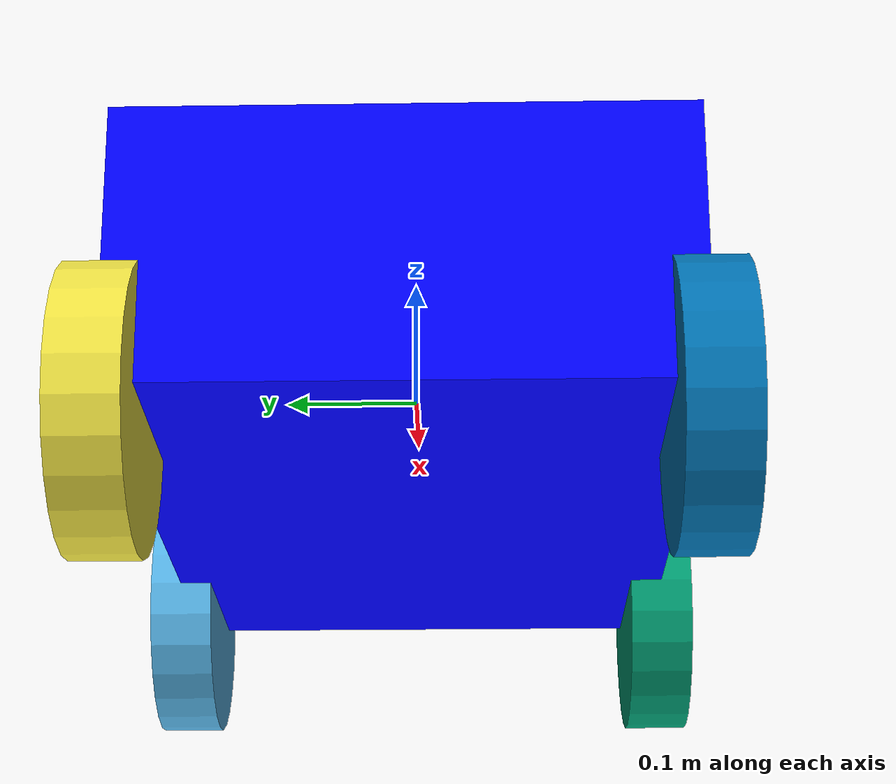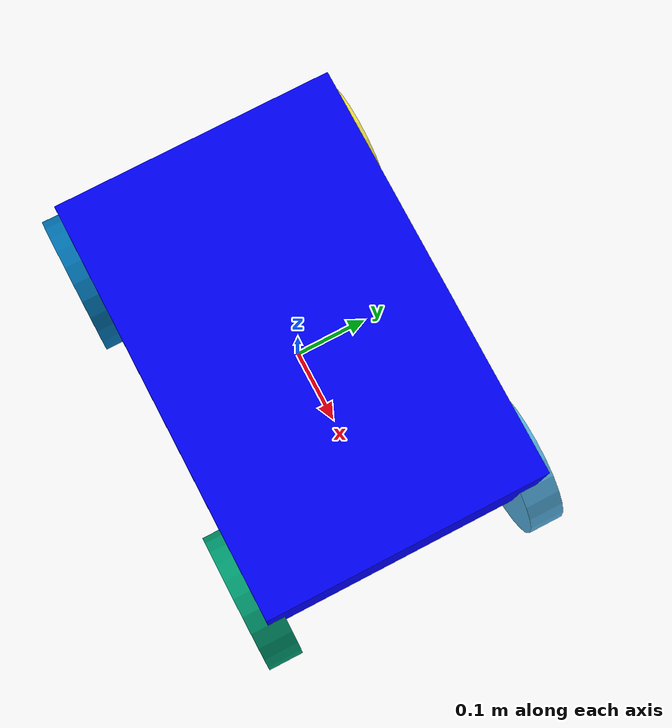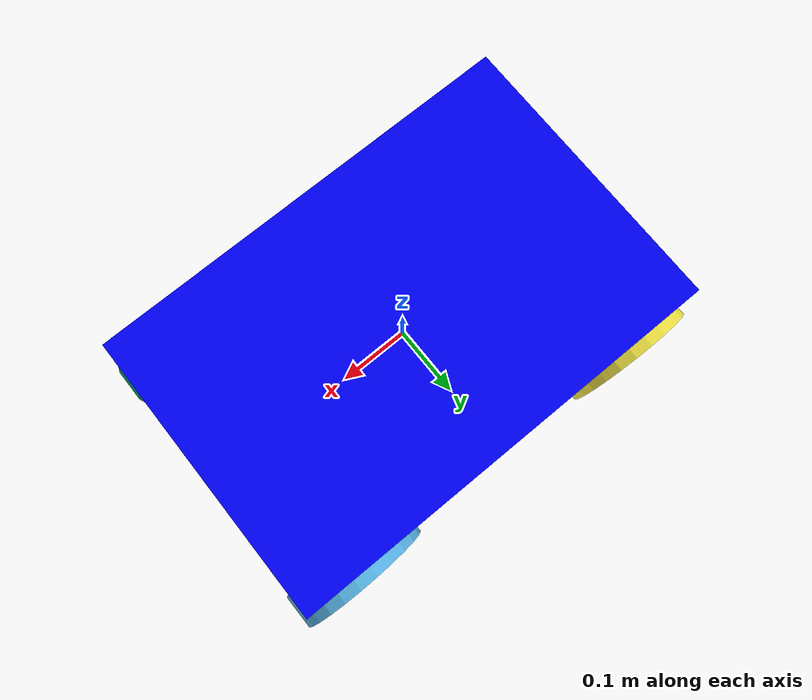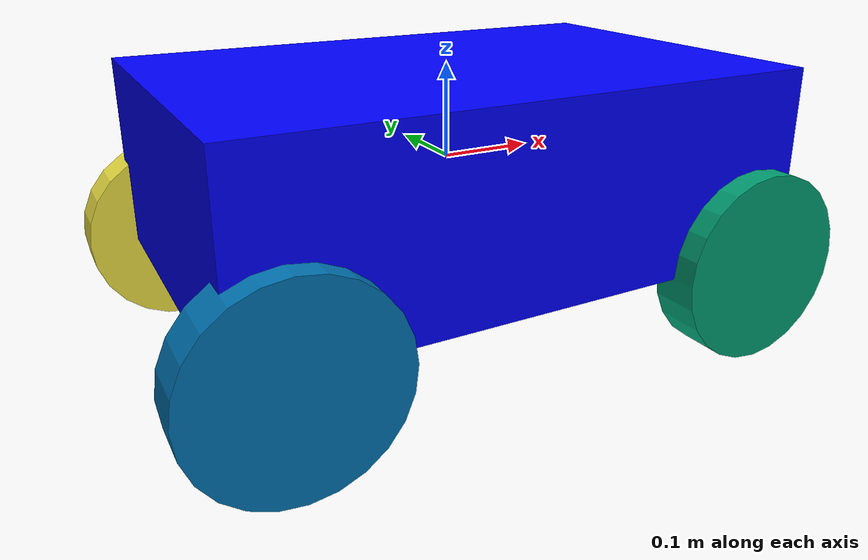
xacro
<?xml version="1.0"?>

<robot name="rover" xmlns:xacro="http://www.ros.org/wiki/xacro">

  <xacro:property name="wheel_radius" value="0.1"/>
  <xacro:property name="wheel_width" value="0.05"/>

  <!-- Chassis -->

  <link name="base_link">

    <visual>
      <geometry>
        <box size="0.6 0.4 0.2"/>
      </geometry>

      <material name="blue">
        <color rgba="0 0 1 1"/>
      </material>

    </visual>

    <collision>
      <geometry>
        <box size="0.6 0.4 0.2"/>
      </geometry>
    </collision>

    <inertial>
      <mass value="10"/>
      <origin xyz="0 0 0"/>
      <inertia
          ixx="1" ixy="0" ixz="0"
          iyy="1" iyz="0"
          izz="1"/>
    </inertial>

  </link>

  <!-- Wheel Macro -->

  <xacro:macro name="wheel" params="name x y">

    <link name="${name}">

      <visual>
        <geometry>
          <cylinder radius="${wheel_radius}"
                    length="${wheel_width}"/>
        </geometry>
      </visual>

      <collision>
        <geometry>
          <cylinder radius="${wheel_radius}"
                    length="${wheel_width}"/>
        </geometry>
      </collision>

    </link>

    <joint name="${name}_joint"
           type="continuous">

      <parent link="base_link"/>
      <child link="${name}"/>

      <origin xyz="${x} ${y} -0.1"
              rpy="1.57 0 0"/>

      <axis xyz="0 0 1"/>

    </joint>

  </xacro:macro>

  <xacro:wheel name="front_left_wheel"  x="0.25" y="0.20"/>
  <xacro:wheel name="front_right_wheel" x="0.25" y="-0.20"/>
  <xacro:wheel name="rear_left_wheel"   x="-0.25" y="0.20"/>
  <xacro:wheel name="rear_right_wheel"  x="-0.25" y="-0.20"/>

</robot>
